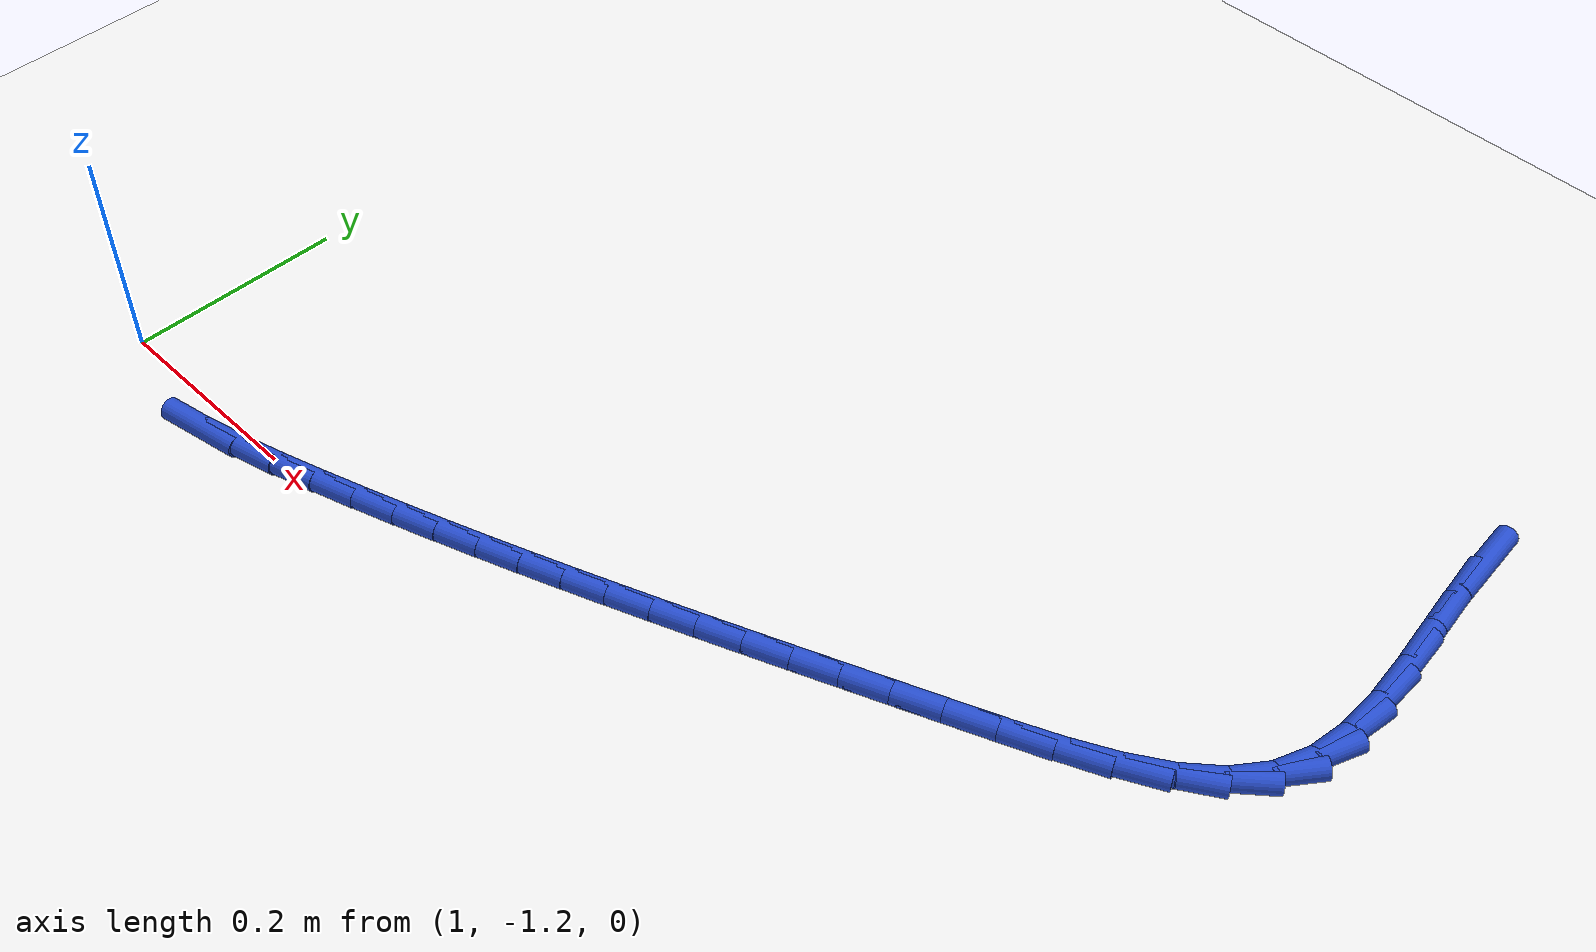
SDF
<sdf version="1.6">
 <world name="default">
  <model name="ground_plane">
   <static>1</static>
   <link name="link">
    <collision name="collision">
     <geometry><plane><normal>0 0 1</normal><size>100 100</size></plane></geometry>
     <surface><friction><ode><mu>100</mu><mu2>50</mu2></ode></friction></surface>
    </collision>
    <visual name="visual">
     <cast_shadows>0</cast_shadows>
     <geometry><plane><normal>0 0 1</normal><size>100 100</size></plane></geometry>
     <material>
      <script><uri>file://media/materials/scripts/gazebo.material</uri><name>Gazebo/WhiteGlow</name></script>
     </material>
    </visual>
   </link>
  </model>
  <model name="line">
   <link name="link_105">
    <pose>1.9823152876164778 -0.5794229310679543 0.01 0 1.57 -1.4692684135198342</pose>
    <collision name="collision">
     <geometry><cylinder><radius>0.01</radius><length>0.08</length></cylinder></geometry>
    </collision>
    <visual name="visual">
     <material>
      <script><name>Gazebo/Blue</name><uri>file://media/materials/scripts/gazebo.material</uri></script>
     </material>
     <geometry><cylinder><radius>0.01</radius><length>0.08</length></cylinder></geometry>
    </visual>
   </link>
   <link name="link_106">
    <pose>1.9867568690926722 -0.6230199053817219 0.01 0 1.57 -1.4192274223718309</pose>
    <collision name="collision">
     <geometry><cylinder><radius>0.01</radius><length>0.08</length></cylinder></geometry>
    </collision>
    <visual name="visual">
     <material>
      <script><name>Gazebo/Blue</name><uri>file://media/materials/scripts/gazebo.material</uri></script>
     </material>
     <geometry><cylinder><radius>0.01</radius><length>0.08</length></cylinder></geometry>
    </visual>
   </link>
   <link name="link_107">
    <pose>1.9934638446135415 -0.6669308687407771 0.01 0 1.57 -1.4120789591819367</pose>
    <collision name="collision">
     <geometry><cylinder><radius>0.01</radius><length>0.08</length></cylinder></geometry>
    </collision>
    <visual name="visual">
     <material>
      <script><name>Gazebo/Blue</name><uri>file://media/materials/scripts/gazebo.material</uri></script>
     </material>
     <geometry><cylinder><radius>0.01</radius><length>0.08</length></cylinder></geometry>
    </visual>
   </link>
   <link name="link_108">
    <pose>2.0004108201597997 -0.7103321878510102 0.01 0 1.57 -1.4489016328538504</pose>
    <collision name="collision">
     <geometry><cylinder><radius>0.01</radius><length>0.08</length></cylinder></geometry>
    </collision>
    <visual name="visual">
     <material>
      <script><name>Gazebo/Blue</name><uri>file://media/materials/scripts/gazebo.material</uri></script>
     </material>
     <geometry><cylinder><radius>0.01</radius><length>0.08</length></cylinder></geometry>
    </visual>
   </link>
   <link name="link_109">
    <pose>2.005563846092502 -0.7523970118982192 0.01 0 1.57 -1.5375985631639986</pose>
    <collision name="collision">
     <geometry><cylinder><radius>0.01</radius><length>0.08</length></cylinder></geometry>
    </collision>
    <visual name="visual">
     <material>
      <script><name>Gazebo/Blue</name><uri>file://media/materials/scripts/gazebo.material</uri></script>
     </material>
     <geometry><cylinder><radius>0.01</radius><length>0.08</length></cylinder></geometry>
    </visual>
   </link>
   <link name="link_110">
    <pose>2.006888972772704 -0.7922984900681993 0.01 0 1.57 1.4485008631408987</pose>
    <collision name="collision">
     <geometry><cylinder><radius>0.01</radius><length>0.08</length></cylinder></geometry>
    </collision>
    <visual name="visual">
     <material>
      <script><name>Gazebo/Blue</name><uri>file://media/materials/scripts/gazebo.material</uri></script>
     </material>
     <geometry><cylinder><radius>0.01</radius><length>0.08</length></cylinder></geometry>
    </visual>
   </link>
   <link name="link_111">
    <pose>2.0023522505614606 -0.8292097715467485 0.01 0 1.57 1.2114675073227494</pose>
    <collision name="collision">
     <geometry><cylinder><radius>0.01</radius><length>0.08</length></cylinder></geometry>
    </collision>
    <visual name="visual">
     <material>
      <script><name>Gazebo/Blue</name><uri>file://media/materials/scripts/gazebo.material</uri></script>
     </material>
     <geometry><cylinder><radius>0.01</radius><length>0.08</length></cylinder></geometry>
    </visual>
   </link>
   <link name="link_112">
    <pose>1.9899206959633937 -0.8623043871846986 0.01 0 1.57 0.9301847891553994</pose>
    <collision name="collision">
     <geometry><cylinder><radius>0.01</radius><length>0.08</length></cylinder></geometry>
    </collision>
    <visual name="visual">
     <material>
      <script><name>Gazebo/Blue</name><uri>file://media/materials/scripts/gazebo.material</uri></script>
     </material>
     <geometry><cylinder><radius>0.01</radius><length>0.08</length></cylinder></geometry>
    </visual>
   </link>
   <link name="link_113">
    <pose>1.9684488802916482 -0.8911064871908686 0.01 0 1.57 0.7098999909946858</pose>
    <collision name="collision">
     <geometry><cylinder><radius>0.01</radius><length>0.08</length></cylinder></geometry>
    </collision>
    <visual name="visual">
     <material>
      <script><name>Gazebo/Blue</name><uri>file://media/materials/scripts/gazebo.material</uri></script>
     </material>
     <geometry><cylinder><radius>0.01</radius><length>0.08</length></cylinder></geometry>
    </visual>
   </link>
   <link name="link_114">
    <pose>1.9393195223623818 -0.9161389403274461 0.01 0 1.57 0.5609447326898488</pose>
    <collision name="collision">
     <geometry><cylinder><radius>0.01</radius><length>0.08</length></cylinder></geometry>
    </collision>
    <visual name="visual">
     <material>
      <script><name>Gazebo/Blue</name><uri>file://media/materials/scripts/gazebo.material</uri></script>
     </material>
     <geometry><cylinder><radius>0.01</radius><length>0.08</length></cylinder></geometry>
    </visual>
   </link>
   <link name="link_115">
    <pose>1.904362501635708 -0.9381012615495019 0.01 0 1.57 0.4659922342857898</pose>
    <collision name="collision">
     <geometry><cylinder><radius>0.01</radius><length>0.08</length></cylinder></geometry>
    </collision>
    <visual name="visual">
     <material>
      <script><name>Gazebo/Blue</name><uri>file://media/materials/scripts/gazebo.material</uri></script>
     </material>
     <geometry><cylinder><radius>0.01</radius><length>0.08</length></cylinder></geometry>
    </visual>
   </link>
   <link name="link_116">
    <pose>1.8654076975717462 -0.9576929658121078 0.01 0 1.57 0.4109688947495014</pose>
    <collision name="collision">
     <geometry><cylinder><radius>0.01</radius><length>0.08</length></cylinder></geometry>
    </collision>
    <visual name="visual">
     <material>
      <script><name>Gazebo/Blue</name><uri>file://media/materials/scripts/gazebo.material</uri></script>
     </material>
     <geometry><cylinder><radius>0.01</radius><length>0.08</length></cylinder></geometry>
    </visual>
   </link>
   <link name="link_117">
    <pose>1.824284989630612 -0.9756135680703358 0.01 0 1.57 0.3880115513879608</pose>
    <collision name="collision">
     <geometry><cylinder><radius>0.01</radius><length>0.08</length></cylinder></geometry>
    </collision>
    <visual name="visual">
     <material>
      <script><name>Gazebo/Blue</name><uri>file://media/materials/scripts/gazebo.material</uri></script>
     </material>
     <geometry><cylinder><radius>0.01</radius><length>0.08</length></cylinder></geometry>
    </visual>
   </link>
   <link name="link_118">
    <pose>1.7828207322628855 -0.9925613527245738 0.01 0 1.57 0.38574813438547984</pose>
    <collision name="collision">
     <geometry><cylinder><radius>0.01</radius><length>0.08</length></cylinder></geometry>
    </collision>
    <visual name="visual">
     <material>
      <script><name>Gazebo/Blue</name><uri>file://media/materials/scripts/gazebo.material</uri></script>
     </material>
     <geometry><cylinder><radius>0.01</radius><length>0.08</length></cylinder></geometry>
    </visual>
   </link>
   <link name="link_119">
    <pose>1.7422614691175449 -1.0090321965248734 0.01 0 1.57 0.3851317537875677</pose>
    <collision name="collision">
     <geometry><cylinder><radius>0.01</radius><length>0.08</length></cylinder></geometry>
    </collision>
    <visual name="visual">
     <material>
      <script><name>Gazebo/Blue</name><uri>file://media/materials/scripts/gazebo.material</uri></script>
     </material>
     <geometry><cylinder><radius>0.01</radius><length>0.08</length></cylinder></geometry>
    </visual>
   </link>
   <link name="link_120">
    <pose>1.702634034188182 -1.0250961846272755 0.01 0 1.57 0.38370498329851666</pose>
    <collision name="collision">
     <geometry><cylinder><radius>0.01</radius><length>0.08</length></cylinder></geometry>
    </collision>
    <visual name="visual">
     <material>
      <script><name>Gazebo/Blue</name><uri>file://media/materials/scripts/gazebo.material</uri></script>
     </material>
     <geometry><cylinder><radius>0.01</radius><length>0.08</length></cylinder></geometry>
    </visual>
   </link>
   <link name="link_121">
    <pose>1.6638111076134576 -1.0407695882204349 0.01 0 1.57 0.3814279784587061</pose>
    <collision name="collision">
     <geometry><cylinder><radius>0.01</radius><length>0.08</length></cylinder></geometry>
    </collision>
    <visual name="visual">
     <material>
      <script><name>Gazebo/Blue</name><uri>file://media/materials/scripts/gazebo.material</uri></script>
     </material>
     <geometry><cylinder><radius>0.01</radius><length>0.08</length></cylinder></geometry>
    </visual>
   </link>
   <link name="link_122">
    <pose>1.6256653695320291 -1.0560686784930062 0.01 0 1.57 0.3782733184342171</pose>
    <collision name="collision">
     <geometry><cylinder><radius>0.01</radius><length>0.08</length></cylinder></geometry>
    </collision>
    <visual name="visual">
     <material>
      <script><name>Gazebo/Blue</name><uri>file://media/materials/scripts/gazebo.material</uri></script>
     </material>
     <geometry><cylinder><radius>0.01</radius><length>0.08</length></cylinder></geometry>
    </visual>
   </link>
   <link name="link_123">
    <pose>1.588069500082556 -1.0710097266336445 0.01 0 1.57 0.3742281047790739</pose>
    <collision name="collision">
     <geometry><cylinder><radius>0.01</radius><length>0.08</length></cylinder></geometry>
    </collision>
    <visual name="visual">
     <material>
      <script><name>Gazebo/Blue</name><uri>file://media/materials/scripts/gazebo.material</uri></script>
     </material>
     <geometry><cylinder><radius>0.01</radius><length>0.08</length></cylinder></geometry>
    </visual>
   </link>
   <link name="link_124">
    <pose>1.550896179403696 -1.0856090038310044 0.01 0 1.57 0.3692956201876306</pose>
    <collision name="collision">
     <geometry><cylinder><radius>0.01</radius><length>0.08</length></cylinder></geometry>
    </collision>
    <visual name="visual">
     <material>
      <script><name>Gazebo/Blue</name><uri>file://media/materials/scripts/gazebo.material</uri></script>
     </material>
     <geometry><cylinder><radius>0.01</radius><length>0.08</length></cylinder></geometry>
    </visual>
   </link>
   <link name="link_125">
    <pose>1.5140180876341085 -1.099882781273741 0.01 0 1.57 0.36349638145788077</pose>
    <collision name="collision">
     <geometry><cylinder><radius>0.01</radius><length>0.08</length></cylinder></geometry>
    </collision>
    <visual name="visual">
     <material>
      <script><name>Gazebo/Blue</name><uri>file://media/materials/scripts/gazebo.material</uri></script>
     </material>
     <geometry><cylinder><radius>0.01</radius><length>0.08</length></cylinder></geometry>
    </visual>
   </link>
   <link name="link_126">
    <pose>1.4773079049124522 -1.1138473301505096 0.01 0 1.57 0.356868451334257</pose>
    <collision name="collision">
     <geometry><cylinder><radius>0.01</radius><length>0.08</length></cylinder></geometry>
    </collision>
    <visual name="visual">
     <material>
      <script><name>Gazebo/Blue</name><uri>file://media/materials/scripts/gazebo.material</uri></script>
     </material>
     <geometry><cylinder><radius>0.01</radius><length>0.08</length></cylinder></geometry>
    </visual>
   </link>
   <link name="link_127">
    <pose>1.4406383113773862 -1.1275189216499641 0.01 0 1.57 0.34946692429463516</pose>
    <collision name="collision">
     <geometry><cylinder><radius>0.01</radius><length>0.08</length></cylinder></geometry>
    </collision>
    <visual name="visual">
     <material>
      <script><name>Gazebo/Blue</name><uri>file://media/materials/scripts/gazebo.material</uri></script>
     </material>
     <geometry><cylinder><radius>0.01</radius><length>0.08</length></cylinder></geometry>
    </visual>
   </link>
   <link name="link_128">
    <pose>1.4038819871675692 -1.14091382696076 0.01 0 1.57 0.3413625675999758</pose>
    <collision name="collision">
     <geometry><cylinder><radius>0.01</radius><length>0.08</length></cylinder></geometry>
    </collision>
    <visual name="visual">
     <material>
      <script><name>Gazebo/Blue</name><uri>file://media/materials/scripts/gazebo.material</uri></script>
     </material>
     <geometry><cylinder><radius>0.01</radius><length>0.08</length></cylinder></geometry>
    </visual>
   </link>
   <link name="link_129">
    <pose>1.3669116124216592 -1.1540483172715512 0.01 0 1.57 0.33263967350492996</pose>
    <collision name="collision">
     <geometry><cylinder><radius>0.01</radius><length>0.08</length></cylinder></geometry>
    </collision>
    <visual name="visual">
     <material>
      <script><name>Gazebo/Blue</name><uri>file://media/materials/scripts/gazebo.material</uri></script>
     </material>
     <geometry><cylinder><radius>0.01</radius><length>0.08</length></cylinder></geometry>
    </visual>
   </link>
   <link name="link_130">
    <pose>1.329599867278315 -1.1669386637709929 0.01 0 1.57 0.32339325147928405</pose>
    <collision name="collision">
     <geometry><cylinder><radius>0.01</radius><length>0.08</length></cylinder></geometry>
    </collision>
    <visual name="visual">
     <material>
      <script><name>Gazebo/Blue</name><uri>file://media/materials/scripts/gazebo.material</uri></script>
     </material>
     <geometry><cylinder><radius>0.01</radius><length>0.08</length></cylinder></geometry>
    </visual>
   </link>
   <link name="link_131">
    <pose>1.2918194318761955 -1.179601137647741 0.01 0 1.57 0.31370454048131646</pose>
    <collision name="collision">
     <geometry><cylinder><radius>0.01</radius><length>0.08</length></cylinder></geometry>
    </collision>
    <visual name="visual">
     <material>
      <script><name>Gazebo/Blue</name><uri>file://media/materials/scripts/gazebo.material</uri></script>
     </material>
     <geometry><cylinder><radius>0.01</radius><length>0.08</length></cylinder></geometry>
    </visual>
   </link>
   <link name="link_132">
    <pose>1.2534434926502795 -1.1920509462204516 0.01 0 1.57 0.3001900015144924</pose>
    <collision name="collision">
     <geometry><cylinder><radius>0.01</radius><length>0.08</length></cylinder></geometry>
    </collision>
    <visual name="visual">
     <material>
      <script><name>Gazebo/Blue</name><uri>file://media/materials/scripts/gazebo.material</uri></script>
     </material>
     <geometry><cylinder><radius>0.01</radius><length>0.08</length></cylinder></geometry>
    </visual>
   </link>
   <link name="link_133">
    <pose>1.2144287877184656 -1.2041277313820766 0.01 0 1.57 0.27553980308165105</pose>
    <collision name="collision">
     <geometry><cylinder><radius>0.01</radius><length>0.08</length></cylinder></geometry>
    </collision>
    <visual name="visual">
     <material>
      <script><name>Gazebo/Blue</name><uri>file://media/materials/scripts/gazebo.material</uri></script>
     </material>
     <geometry><cylinder><radius>0.01</radius><length>0.08</length></cylinder></geometry>
    </visual>
   </link>
   <link name="link_134">
    <pose>1.1749079580259814 -1.2153015140474832 0.01 0 1.57 0.23850117631805287</pose>
    <collision name="collision">
     <geometry><cylinder><radius>0.01</radius><length>0.08</length></cylinder></geometry>
    </collision>
    <visual name="visual">
     <material>
      <script><name>Gazebo/Blue</name><uri>file://media/materials/scripts/gazebo.material</uri></script>
     </material>
     <geometry><cylinder><radius>0.01</radius><length>0.08</length></cylinder></geometry>
    </visual>
   </link>
   <link name="link_135">
    <pose>1.135035896992423 -1.2249955564667343 0.01 0 1.57 0.18835368286440227</pose>
    <collision name="collision">
     <geometry><cylinder><radius>0.01</radius><length>0.08</length></cylinder></geometry>
    </collision>
    <visual name="visual">
     <material>
      <script><name>Gazebo/Blue</name><uri>file://media/materials/scripts/gazebo.material</uri></script>
     </material>
     <geometry><cylinder><radius>0.01</radius><length>0.08</length></cylinder></geometry>
    </visual>
   </link>
  </model>
 </world>
</sdf>
